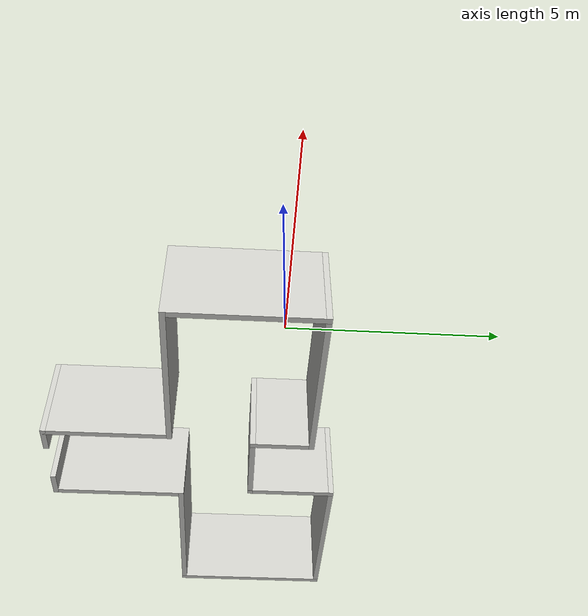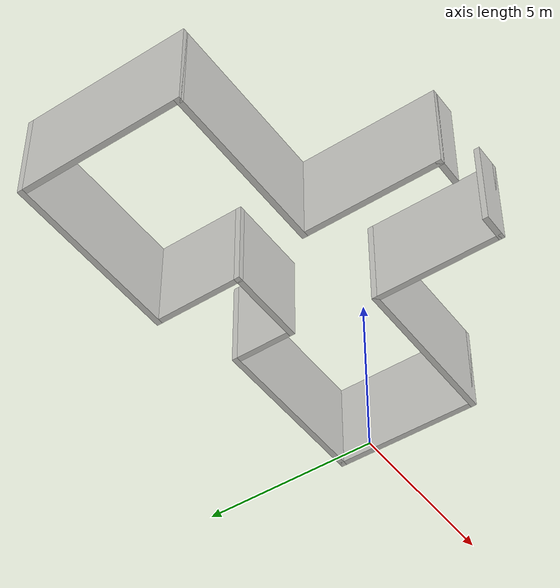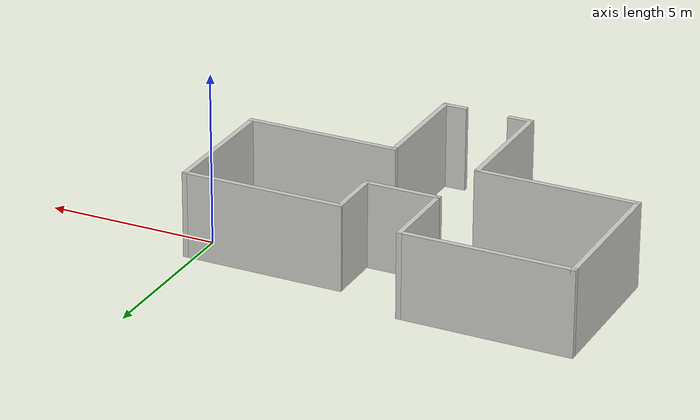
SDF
<?xml version='1.0'?>
<sdf version='1.7'>
  <model name='house_bones'>
    <pose>-5.515 -2.225 0 0 -0 0</pose>
    <link name='Wall_0'>
      <collision name='Wall_0_Collision'>
        <geometry>
          <box>
            <size>4.5 0.15 2.5</size>
          </box>
        </geometry>
        <pose>0 0 1.25 0 -0 0</pose>
      </collision>
      <visual name='Wall_0_Visual'>
        <pose>0 0 1.25 0 -0 0</pose>
        <geometry>
          <box>
            <size>4.5 0.15 2.5</size>
          </box>
        </geometry>
        <material>
          <script>
            <uri>file://media/materials/scripts/gazebo.material</uri>
            <name>Gazebo/CeilingTiled</name>
          </script>
          <ambient>1 1 1 1</ambient>
        </material>
        <meta>
          <layer>0</layer>
        </meta>
      </visual>
      <pose>3.6 -0.625 0 0 -0 0</pose>
    </link>
    <link name='Wall_10'>
      <collision name='Wall_10_Collision'>
        <geometry>
          <box>
            <size>4.5 0.15 2.5</size>
          </box>
        </geometry>
        <pose>0 0 1.25 0 -0 0</pose>
      </collision>
      <visual name='Wall_10_Visual'>
        <pose>0 0 1.25 0 -0 0</pose>
        <geometry>
          <box>
            <size>4.5 0.15 2.5</size>
          </box>
        </geometry>
        <material>
          <script>
            <uri>file://media/materials/scripts/gazebo.material</uri>
            <name>Gazebo/CeilingTiled</name>
          </script>
          <ambient>0.760784 0.662745 0.627451 1</ambient>
        </material>
        <meta>
          <layer>0</layer>
        </meta>
      </visual>
      <pose>-5.775 1.8 0 0 -0 -1.5708</pose>
    </link>
    <link name='Wall_11'>
      <collision name='Wall_11_Collision'>
        <geometry>
          <box>
            <size>4.75 0.15 2.5</size>
          </box>
        </geometry>
        <pose>0 0 1.25 0 -0 0</pose>
      </collision>
      <visual name='Wall_11_Visual'>
        <pose>0 0 1.25 0 -0 0</pose>
        <geometry>
          <box>
            <size>4.75 0.15 2.5</size>
          </box>
        </geometry>
        <material>
          <script>
            <uri>file://media/materials/scripts/gazebo.material</uri>
            <name>Gazebo/CeilingTiled</name>
          </script>
          <ambient>0.760784 0.662745 0.627451 1</ambient>
        </material>
        <meta>
          <layer>0</layer>
        </meta>
      </visual>
      <pose>-3.475 -0.375 0 0 -0 0</pose>
    </link>
    <link name='Wall_12'>
      <collision name='Wall_12_Collision'>
        <geometry>
          <box>
            <size>3.75 0.15 2.5</size>
          </box>
        </geometry>
        <pose>0 0 1.25 0 -0 0</pose>
      </collision>
      <visual name='Wall_12_Visual'>
        <pose>0 0 1.25 0 -0 0</pose>
        <geometry>
          <box>
            <size>3.75 0.15 2.5</size>
          </box>
        </geometry>
        <material>
          <script>
            <uri>file://media/materials/scripts/gazebo.material</uri>
            <name>Gazebo/CeilingTiled</name>
          </script>
          <ambient>0.760784 0.662745 0.627451 1</ambient>
        </material>
        <meta>
          <layer>0</layer>
        </meta>
      </visual>
      <pose>-1.175 -2.175 0 0 -0 -1.5708</pose>
    </link>
    <link name='Wall_14'>
      <collision name='Wall_14_Collision'>
        <geometry>
          <box>
            <size>3.5 0.15 2.5</size>
          </box>
        </geometry>
        <pose>0 0 1.25 0 -0 0</pose>
      </collision>
      <visual name='Wall_14_Visual'>
        <pose>0 0 1.25 0 -0 0</pose>
        <geometry>
          <box>
            <size>3.5 0.15 2.5</size>
          </box>
        </geometry>
        <material>
          <script>
            <uri>file://media/materials/scripts/gazebo.material</uri>
            <name>Gazebo/CeilingTiled</name>
          </script>
          <ambient>0.760784 0.662745 0.627451 1</ambient>
        </material>
        <meta>
          <layer>0</layer>
        </meta>
      </visual>
      <pose>1.425 -2.3 0 0 -0 -1.5708</pose>
    </link>
    <link name='Wall_15'>
      <collision name='Wall_15_Collision'>
        <geometry>
          <box>
            <size>0.75 0.15 2.5</size>
          </box>
        </geometry>
        <pose>0 0 1.25 0 -0 0</pose>
      </collision>
      <visual name='Wall_15_Visual'>
        <pose>0 0 1.25 0 -0 0</pose>
        <geometry>
          <box>
            <size>0.75 0.15 2.5</size>
          </box>
        </geometry>
        <material>
          <script>
            <uri>file://media/materials/scripts/gazebo.material</uri>
            <name>Gazebo/CeilingTiled</name>
          </script>
          <ambient>0.435294 0.796078 0.67451 1</ambient>
        </material>
        <meta>
          <layer>0</layer>
        </meta>
      </visual>
      <pose>1.125 -3.975 0 0 -0 3.14159</pose>
    </link>
    <link name='Wall_17'>
      <collision name='Wall_17_Collision'>
        <geometry>
          <box>
            <size>0.75 0.15 2.5</size>
          </box>
        </geometry>
        <pose>0 0 1.25 0 -0 0</pose>
      </collision>
      <visual name='Wall_17_Visual'>
        <pose>0 0 1.25 0 -0 0</pose>
        <geometry>
          <box>
            <size>0.75 0.15 2.5</size>
          </box>
        </geometry>
        <material>
          <script>
            <uri>file://media/materials/scripts/gazebo.material</uri>
            <name>Gazebo/CeilingTiled</name>
          </script>
          <ambient>0.435294 0.796078 0.67451 1</ambient>
        </material>
        <meta>
          <layer>0</layer>
        </meta>
      </visual>
      <pose>-0.875 -3.975 0 0 -0 0</pose>
    </link>
    <link name='Wall_3'>
      <collision name='Wall_3_Collision'>
        <geometry>
          <box>
            <size>4 0.15 2.5</size>
          </box>
        </geometry>
        <pose>0 0 1.25 0 -0 0</pose>
      </collision>
      <visual name='Wall_3_Visual'>
        <pose>0 0 1.25 0 -0 0</pose>
        <geometry>
          <box>
            <size>4 0.15 2.5</size>
          </box>
        </geometry>
        <material>
          <script>
            <uri>file://media/materials/scripts/gazebo.material</uri>
            <name>Gazebo/CeilingTiled</name>
          </script>
          <ambient>1 1 1 1</ambient>
        </material>
        <meta>
          <layer>0</layer>
        </meta>
      </visual>
      <pose>5.775 1.3 0 0 -0 1.5708</pose>
    </link>
    <link name='Wall_5'>
      <collision name='Wall_5_Collision'>
        <geometry>
          <box>
            <size>4.75 0.15 2.5</size>
          </box>
        </geometry>
        <pose>0 0 1.25 0 -0 0</pose>
      </collision>
      <visual name='Wall_5_Visual'>
        <pose>0 0 1.25 0 -0 0</pose>
        <geometry>
          <box>
            <size>4.75 0.15 2.5</size>
          </box>
        </geometry>
        <material>
          <script>
            <uri>file://media/materials/scripts/gazebo.material</uri>
            <name>Gazebo/CeilingTiled</name>
          </script>
          <ambient>1 1 1 1</ambient>
        </material>
        <meta>
          <layer>0</layer>
        </meta>
      </visual>
      <pose>3.475 3.225 0 0 -0 3.14159</pose>
    </link>
    <link name='Wall_6'>
      <collision name='Wall_6_Collision'>
        <geometry>
          <box>
            <size>1.75 0.15 2.5</size>
          </box>
        </geometry>
        <pose>0 0 1.25 0 -0 0</pose>
      </collision>
      <visual name='Wall_6_Visual'>
        <pose>0 0 1.25 0 -0 0</pose>
        <geometry>
          <box>
            <size>1.75 0.15 2.5</size>
          </box>
        </geometry>
        <material>
          <script>
            <uri>file://media/materials/scripts/gazebo.material</uri>
            <name>Gazebo/CeilingTiled</name>
          </script>
          <ambient>1 1 1 1</ambient>
        </material>
        <meta>
          <layer>0</layer>
        </meta>
      </visual>
      <pose>1.175 2.425 0 0 -0 -1.5708</pose>
    </link>
    <link name='Wall_7'>
      <collision name='Wall_7_Collision'>
        <geometry>
          <box>
            <size>2.25 0.15 2.5</size>
          </box>
        </geometry>
        <pose>0 0 1.25 0 -0 0</pose>
      </collision>
      <visual name='Wall_7_Visual'>
        <pose>0 0 1.25 0 -0 0</pose>
        <geometry>
          <box>
            <size>2.25 0.15 2.5</size>
          </box>
        </geometry>
        <material>
          <script>
            <uri>file://media/materials/scripts/gazebo.material</uri>
            <name>Gazebo/CeilingTiled</name>
          </script>
          <ambient>0.760784 0.662745 0.627451 1</ambient>
        </material>
        <meta>
          <layer>0</layer>
        </meta>
      </visual>
      <pose>0.125 1.625 0 0 -0 3.14159</pose>
    </link>
    <link name='Wall_8'>
      <collision name='Wall_8_Collision'>
        <geometry>
          <box>
            <size>2.5 0.15 2.5</size>
          </box>
        </geometry>
        <pose>0 0 1.25 0 -0 0</pose>
      </collision>
      <visual name='Wall_8_Visual'>
        <pose>0 0 1.25 0 -0 0</pose>
        <geometry>
          <box>
            <size>2.5 0.15 2.5</size>
          </box>
        </geometry>
        <material>
          <script>
            <uri>file://media/materials/scripts/gazebo.material</uri>
            <name>Gazebo/CeilingTiled</name>
          </script>
          <ambient>0.760784 0.662745 0.627451 1</ambient>
        </material>
        <meta>
          <layer>0</layer>
        </meta>
      </visual>
      <pose>-0.925 2.8 0 0 -0 1.5708</pose>
    </link>
    <link name='Wall_9'>
      <collision name='Wall_9_Collision'>
        <geometry>
          <box>
            <size>5 0.15 2.5</size>
          </box>
        </geometry>
        <pose>0 0 1.25 0 -0 0</pose>
      </collision>
      <visual name='Wall_9_Visual'>
        <pose>0 0 1.25 0 -0 0</pose>
        <geometry>
          <box>
            <size>5 0.15 2.5</size>
          </box>
        </geometry>
        <material>
          <script>
            <uri>file://media/materials/scripts/gazebo.material</uri>
            <name>Gazebo/CeilingTiled</name>
          </script>
          <ambient>0.760784 0.662745 0.627451 1</ambient>
        </material>
        <meta>
          <layer>0</layer>
        </meta>
      </visual>
      <pose>-3.35 3.975 0 0 -0 3.14159</pose>
    </link>
    <static>1</static>
  </model>
</sdf>
